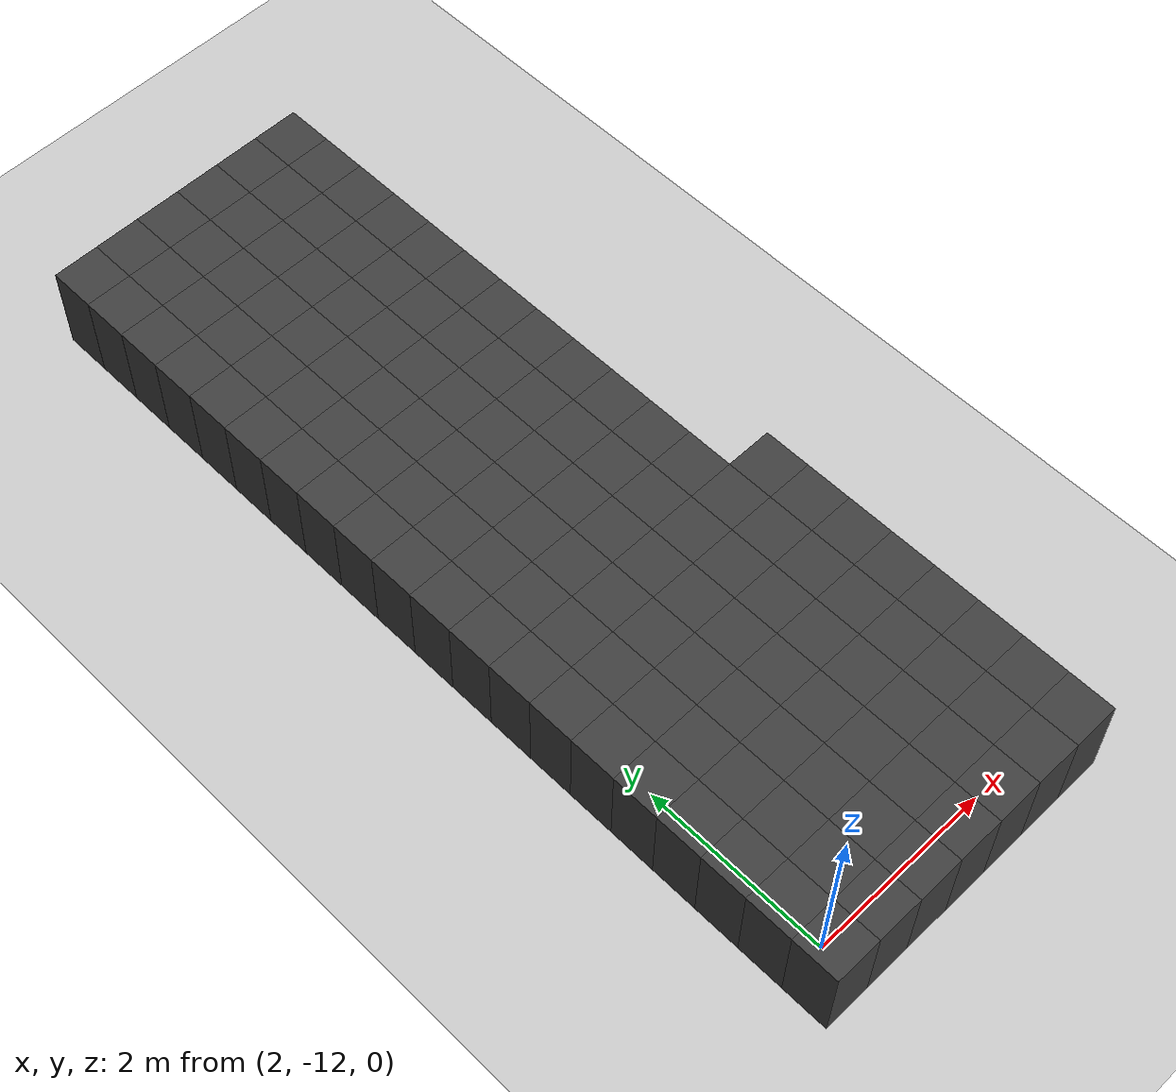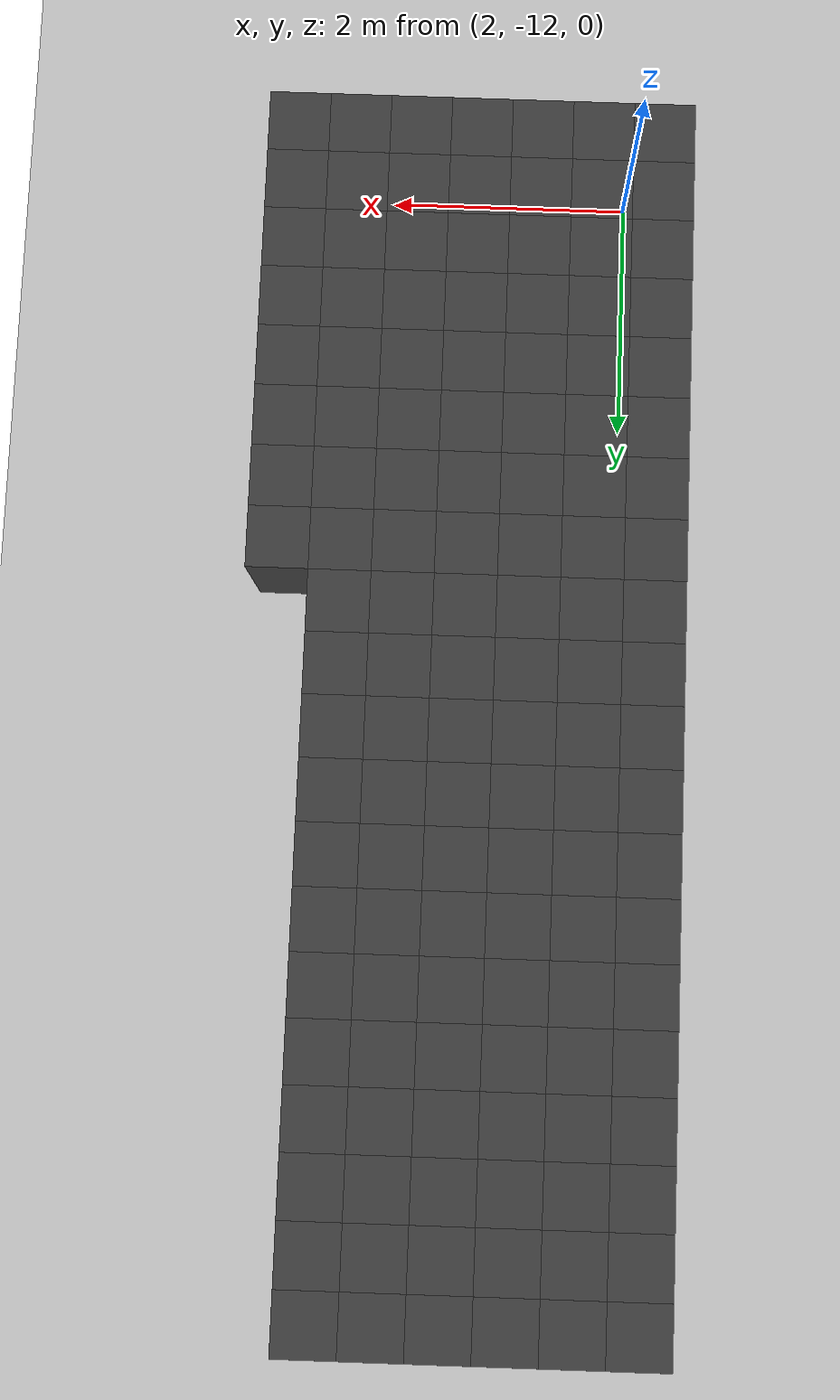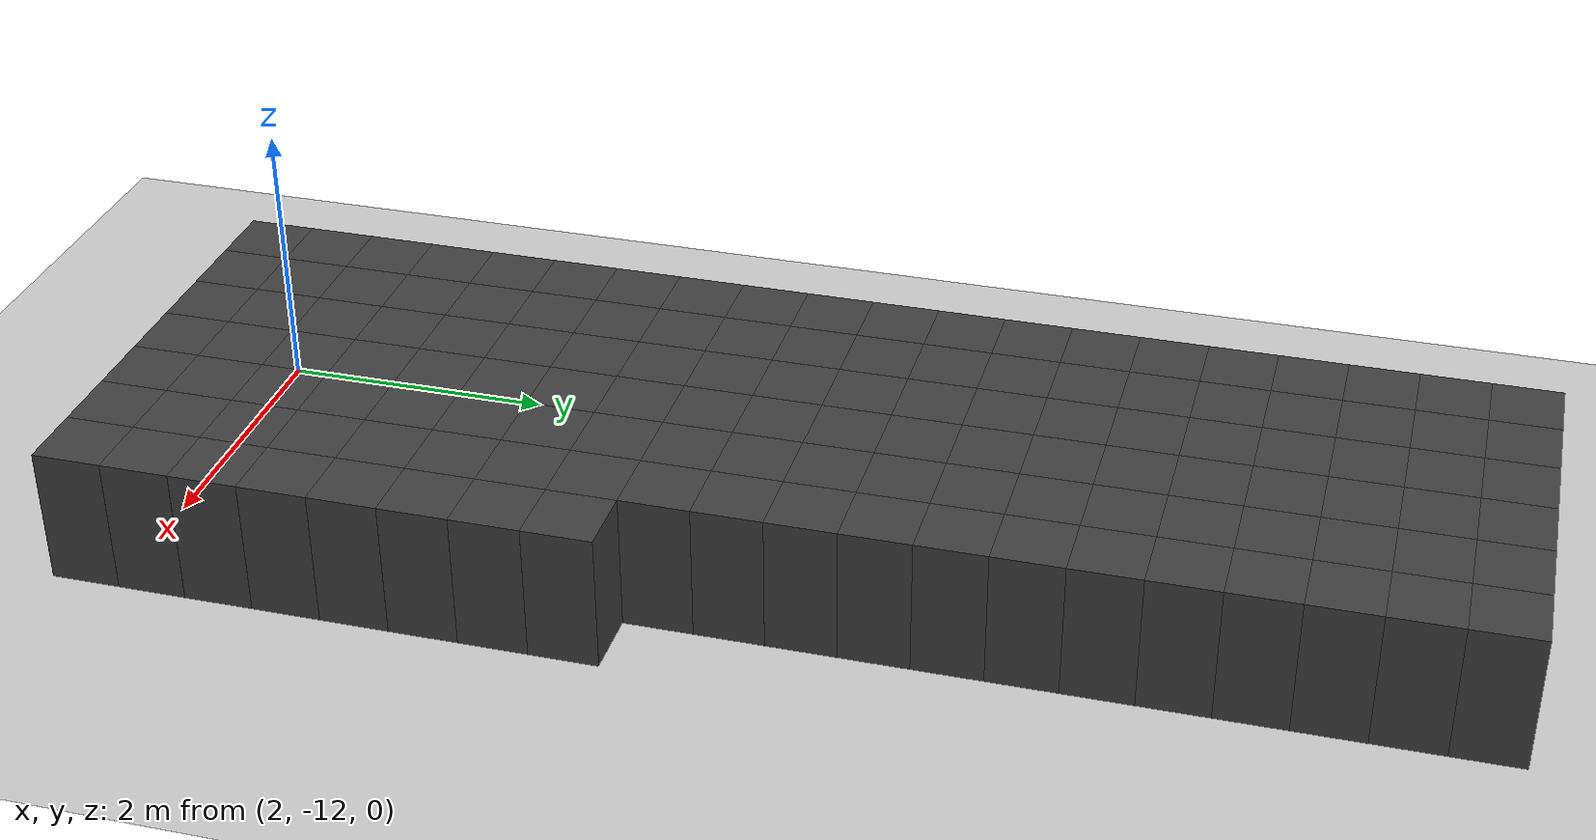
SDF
<sdf version="1.7">
 <world name="map_14735">
  <model name="ground_plane">
   <static>true</static>
   <link name="link">
    <collision name="collision">
     <geometry><plane><normal>0 0 1</normal><size>200 200</size></plane></geometry>
    </collision>
    <visual name="visual">
     <geometry><plane><normal>0 0 1</normal><size>200 200</size></plane></geometry>
     <material><ambient>0.8 0.8 0.8 1</ambient><diffuse>0.8 0.8 0.8 1</diffuse></material>
    </visual>
   </link>
  </model>
  <model name="maze_environment">
   <static>true</static>
   <link name="wall_961">
    <pose>1.750 -2.750 0.500 0 0 0</pose>
    <collision name="col"><geometry><box><size>0.5 0.5 1.0</size></box></geometry></collision>
    <visual name="vis">
     <geometry><box><size>0.5 0.5 1.0</size></box></geometry>
     <material><ambient>0.15 0.15 0.15 1</ambient><diffuse>0.25 0.25 0.25 1</diffuse></material>
    </visual>
   </link>
   <link name="wall_962">
    <pose>2.250 -2.750 0.500 0 0 0</pose>
    <collision name="col"><geometry><box><size>0.5 0.5 1.0</size></box></geometry></collision>
    <visual name="vis">
     <geometry><box><size>0.5 0.5 1.0</size></box></geometry>
     <material><ambient>0.15 0.15 0.15 1</ambient><diffuse>0.25 0.25 0.25 1</diffuse></material>
    </visual>
   </link>
   <link name="wall_963">
    <pose>2.750 -2.750 0.500 0 0 0</pose>
    <collision name="col"><geometry><box><size>0.5 0.5 1.0</size></box></geometry></collision>
    <visual name="vis">
     <geometry><box><size>0.5 0.5 1.0</size></box></geometry>
     <material><ambient>0.15 0.15 0.15 1</ambient><diffuse>0.25 0.25 0.25 1</diffuse></material>
    </visual>
   </link>
   <link name="wall_964">
    <pose>3.250 -2.750 0.500 0 0 0</pose>
    <collision name="col"><geometry><box><size>0.5 0.5 1.0</size></box></geometry></collision>
    <visual name="vis">
     <geometry><box><size>0.5 0.5 1.0</size></box></geometry>
     <material><ambient>0.15 0.15 0.15 1</ambient><diffuse>0.25 0.25 0.25 1</diffuse></material>
    </visual>
   </link>
   <link name="wall_965">
    <pose>3.750 -2.750 0.500 0 0 0</pose>
    <collision name="col"><geometry><box><size>0.5 0.5 1.0</size></box></geometry></collision>
    <visual name="vis">
     <geometry><box><size>0.5 0.5 1.0</size></box></geometry>
     <material><ambient>0.15 0.15 0.15 1</ambient><diffuse>0.25 0.25 0.25 1</diffuse></material>
    </visual>
   </link>
   <link name="wall_966">
    <pose>4.250 -2.750 0.500 0 0 0</pose>
    <collision name="col"><geometry><box><size>0.5 0.5 1.0</size></box></geometry></collision>
    <visual name="vis">
     <geometry><box><size>0.5 0.5 1.0</size></box></geometry>
     <material><ambient>0.15 0.15 0.15 1</ambient><diffuse>0.25 0.25 0.25 1</diffuse></material>
    </visual>
   </link>
   <link name="wall_1001">
    <pose>1.750 -3.250 0.500 0 0 0</pose>
    <collision name="col"><geometry><box><size>0.5 0.5 1.0</size></box></geometry></collision>
    <visual name="vis">
     <geometry><box><size>0.5 0.5 1.0</size></box></geometry>
     <material><ambient>0.15 0.15 0.15 1</ambient><diffuse>0.25 0.25 0.25 1</diffuse></material>
    </visual>
   </link>
   <link name="wall_1002">
    <pose>2.250 -3.250 0.500 0 0 0</pose>
    <collision name="col"><geometry><box><size>0.5 0.5 1.0</size></box></geometry></collision>
    <visual name="vis">
     <geometry><box><size>0.5 0.5 1.0</size></box></geometry>
     <material><ambient>0.15 0.15 0.15 1</ambient><diffuse>0.25 0.25 0.25 1</diffuse></material>
    </visual>
   </link>
   <link name="wall_1003">
    <pose>2.750 -3.250 0.500 0 0 0</pose>
    <collision name="col"><geometry><box><size>0.5 0.5 1.0</size></box></geometry></collision>
    <visual name="vis">
     <geometry><box><size>0.5 0.5 1.0</size></box></geometry>
     <material><ambient>0.15 0.15 0.15 1</ambient><diffuse>0.25 0.25 0.25 1</diffuse></material>
    </visual>
   </link>
   <link name="wall_1004">
    <pose>3.250 -3.250 0.500 0 0 0</pose>
    <collision name="col"><geometry><box><size>0.5 0.5 1.0</size></box></geometry></collision>
    <visual name="vis">
     <geometry><box><size>0.5 0.5 1.0</size></box></geometry>
     <material><ambient>0.15 0.15 0.15 1</ambient><diffuse>0.25 0.25 0.25 1</diffuse></material>
    </visual>
   </link>
   <link name="wall_1005">
    <pose>3.750 -3.250 0.500 0 0 0</pose>
    <collision name="col"><geometry><box><size>0.5 0.5 1.0</size></box></geometry></collision>
    <visual name="vis">
     <geometry><box><size>0.5 0.5 1.0</size></box></geometry>
     <material><ambient>0.15 0.15 0.15 1</ambient><diffuse>0.25 0.25 0.25 1</diffuse></material>
    </visual>
   </link>
   <link name="wall_1006">
    <pose>4.250 -3.250 0.500 0 0 0</pose>
    <collision name="col"><geometry><box><size>0.5 0.5 1.0</size></box></geometry></collision>
    <visual name="vis">
     <geometry><box><size>0.5 0.5 1.0</size></box></geometry>
     <material><ambient>0.15 0.15 0.15 1</ambient><diffuse>0.25 0.25 0.25 1</diffuse></material>
    </visual>
   </link>
   <link name="wall_1041">
    <pose>1.750 -3.750 0.500 0 0 0</pose>
    <collision name="col"><geometry><box><size>0.5 0.5 1.0</size></box></geometry></collision>
    <visual name="vis">
     <geometry><box><size>0.5 0.5 1.0</size></box></geometry>
     <material><ambient>0.15 0.15 0.15 1</ambient><diffuse>0.25 0.25 0.25 1</diffuse></material>
    </visual>
   </link>
   <link name="wall_1042">
    <pose>2.250 -3.750 0.500 0 0 0</pose>
    <collision name="col"><geometry><box><size>0.5 0.5 1.0</size></box></geometry></collision>
    <visual name="vis">
     <geometry><box><size>0.5 0.5 1.0</size></box></geometry>
     <material><ambient>0.15 0.15 0.15 1</ambient><diffuse>0.25 0.25 0.25 1</diffuse></material>
    </visual>
   </link>
   <link name="wall_1043">
    <pose>2.750 -3.750 0.500 0 0 0</pose>
    <collision name="col"><geometry><box><size>0.5 0.5 1.0</size></box></geometry></collision>
    <visual name="vis">
     <geometry><box><size>0.5 0.5 1.0</size></box></geometry>
     <material><ambient>0.15 0.15 0.15 1</ambient><diffuse>0.25 0.25 0.25 1</diffuse></material>
    </visual>
   </link>
   <link name="wall_1044">
    <pose>3.250 -3.750 0.500 0 0 0</pose>
    <collision name="col"><geometry><box><size>0.5 0.5 1.0</size></box></geometry></collision>
    <visual name="vis">
     <geometry><box><size>0.5 0.5 1.0</size></box></geometry>
     <material><ambient>0.15 0.15 0.15 1</ambient><diffuse>0.25 0.25 0.25 1</diffuse></material>
    </visual>
   </link>
   <link name="wall_1045">
    <pose>3.750 -3.750 0.500 0 0 0</pose>
    <collision name="col"><geometry><box><size>0.5 0.5 1.0</size></box></geometry></collision>
    <visual name="vis">
     <geometry><box><size>0.5 0.5 1.0</size></box></geometry>
     <material><ambient>0.15 0.15 0.15 1</ambient><diffuse>0.25 0.25 0.25 1</diffuse></material>
    </visual>
   </link>
   <link name="wall_1046">
    <pose>4.250 -3.750 0.500 0 0 0</pose>
    <collision name="col"><geometry><box><size>0.5 0.5 1.0</size></box></geometry></collision>
    <visual name="vis">
     <geometry><box><size>0.5 0.5 1.0</size></box></geometry>
     <material><ambient>0.15 0.15 0.15 1</ambient><diffuse>0.25 0.25 0.25 1</diffuse></material>
    </visual>
   </link>
   <link name="wall_1081">
    <pose>1.750 -4.250 0.500 0 0 0</pose>
    <collision name="col"><geometry><box><size>0.5 0.5 1.0</size></box></geometry></collision>
    <visual name="vis">
     <geometry><box><size>0.5 0.5 1.0</size></box></geometry>
     <material><ambient>0.15 0.15 0.15 1</ambient><diffuse>0.25 0.25 0.25 1</diffuse></material>
    </visual>
   </link>
   <link name="wall_1082">
    <pose>2.250 -4.250 0.500 0 0 0</pose>
    <collision name="col"><geometry><box><size>0.5 0.5 1.0</size></box></geometry></collision>
    <visual name="vis">
     <geometry><box><size>0.5 0.5 1.0</size></box></geometry>
     <material><ambient>0.15 0.15 0.15 1</ambient><diffuse>0.25 0.25 0.25 1</diffuse></material>
    </visual>
   </link>
   <link name="wall_1083">
    <pose>2.750 -4.250 0.500 0 0 0</pose>
    <collision name="col"><geometry><box><size>0.5 0.5 1.0</size></box></geometry></collision>
    <visual name="vis">
     <geometry><box><size>0.5 0.5 1.0</size></box></geometry>
     <material><ambient>0.15 0.15 0.15 1</ambient><diffuse>0.25 0.25 0.25 1</diffuse></material>
    </visual>
   </link>
   <link name="wall_1084">
    <pose>3.250 -4.250 0.500 0 0 0</pose>
    <collision name="col"><geometry><box><size>0.5 0.5 1.0</size></box></geometry></collision>
    <visual name="vis">
     <geometry><box><size>0.5 0.5 1.0</size></box></geometry>
     <material><ambient>0.15 0.15 0.15 1</ambient><diffuse>0.25 0.25 0.25 1</diffuse></material>
    </visual>
   </link>
   <link name="wall_1085">
    <pose>3.750 -4.250 0.500 0 0 0</pose>
    <collision name="col"><geometry><box><size>0.5 0.5 1.0</size></box></geometry></collision>
    <visual name="vis">
     <geometry><box><size>0.5 0.5 1.0</size></box></geometry>
     <material><ambient>0.15 0.15 0.15 1</ambient><diffuse>0.25 0.25 0.25 1</diffuse></material>
    </visual>
   </link>
   <link name="wall_1086">
    <pose>4.250 -4.250 0.500 0 0 0</pose>
    <collision name="col"><geometry><box><size>0.5 0.5 1.0</size></box></geometry></collision>
    <visual name="vis">
     <geometry><box><size>0.5 0.5 1.0</size></box></geometry>
     <material><ambient>0.15 0.15 0.15 1</ambient><diffuse>0.25 0.25 0.25 1</diffuse></material>
    </visual>
   </link>
   <link name="wall_1121">
    <pose>1.750 -4.750 0.500 0 0 0</pose>
    <collision name="col"><geometry><box><size>0.5 0.5 1.0</size></box></geometry></collision>
    <visual name="vis">
     <geometry><box><size>0.5 0.5 1.0</size></box></geometry>
     <material><ambient>0.15 0.15 0.15 1</ambient><diffuse>0.25 0.25 0.25 1</diffuse></material>
    </visual>
   </link>
   <link name="wall_1122">
    <pose>2.250 -4.750 0.500 0 0 0</pose>
    <collision name="col"><geometry><box><size>0.5 0.5 1.0</size></box></geometry></collision>
    <visual name="vis">
     <geometry><box><size>0.5 0.5 1.0</size></box></geometry>
     <material><ambient>0.15 0.15 0.15 1</ambient><diffuse>0.25 0.25 0.25 1</diffuse></material>
    </visual>
   </link>
   <link name="wall_1123">
    <pose>2.750 -4.750 0.500 0 0 0</pose>
    <collision name="col"><geometry><box><size>0.5 0.5 1.0</size></box></geometry></collision>
    <visual name="vis">
     <geometry><box><size>0.5 0.5 1.0</size></box></geometry>
     <material><ambient>0.15 0.15 0.15 1</ambient><diffuse>0.25 0.25 0.25 1</diffuse></material>
    </visual>
   </link>
   <link name="wall_1124">
    <pose>3.250 -4.750 0.500 0 0 0</pose>
    <collision name="col"><geometry><box><size>0.5 0.5 1.0</size></box></geometry></collision>
    <visual name="vis">
     <geometry><box><size>0.5 0.5 1.0</size></box></geometry>
     <material><ambient>0.15 0.15 0.15 1</ambient><diffuse>0.25 0.25 0.25 1</diffuse></material>
    </visual>
   </link>
   <link name="wall_1125">
    <pose>3.750 -4.750 0.500 0 0 0</pose>
    <collision name="col"><geometry><box><size>0.5 0.5 1.0</size></box></geometry></collision>
    <visual name="vis">
     <geometry><box><size>0.5 0.5 1.0</size></box></geometry>
     <material><ambient>0.15 0.15 0.15 1</ambient><diffuse>0.25 0.25 0.25 1</diffuse></material>
    </visual>
   </link>
   <link name="wall_1126">
    <pose>4.250 -4.750 0.500 0 0 0</pose>
    <collision name="col"><geometry><box><size>0.5 0.5 1.0</size></box></geometry></collision>
    <visual name="vis">
     <geometry><box><size>0.5 0.5 1.0</size></box></geometry>
     <material><ambient>0.15 0.15 0.15 1</ambient><diffuse>0.25 0.25 0.25 1</diffuse></material>
    </visual>
   </link>
   <link name="wall_1159">
    <pose>1.750 -5.250 0.500 0 0 0</pose>
    <collision name="col"><geometry><box><size>0.5 0.5 1.0</size></box></geometry></collision>
    <visual name="vis">
     <geometry><box><size>0.5 0.5 1.0</size></box></geometry>
     <material><ambient>0.15 0.15 0.15 1</ambient><diffuse>0.25 0.25 0.25 1</diffuse></material>
    </visual>
   </link>
   <link name="wall_1160">
    <pose>2.250 -5.250 0.500 0 0 0</pose>
    <collision name="col"><geometry><box><size>0.5 0.5 1.0</size></box></geometry></collision>
    <visual name="vis">
     <geometry><box><size>0.5 0.5 1.0</size></box></geometry>
     <material><ambient>0.15 0.15 0.15 1</ambient><diffuse>0.25 0.25 0.25 1</diffuse></material>
    </visual>
   </link>
   <link name="wall_1161">
    <pose>2.750 -5.250 0.500 0 0 0</pose>
    <collision name="col"><geometry><box><size>0.5 0.5 1.0</size></box></geometry></collision>
    <visual name="vis">
     <geometry><box><size>0.5 0.5 1.0</size></box></geometry>
     <material><ambient>0.15 0.15 0.15 1</ambient><diffuse>0.25 0.25 0.25 1</diffuse></material>
    </visual>
   </link>
   <link name="wall_1162">
    <pose>3.250 -5.250 0.500 0 0 0</pose>
    <collision name="col"><geometry><box><size>0.5 0.5 1.0</size></box></geometry></collision>
    <visual name="vis">
     <geometry><box><size>0.5 0.5 1.0</size></box></geometry>
     <material><ambient>0.15 0.15 0.15 1</ambient><diffuse>0.25 0.25 0.25 1</diffuse></material>
    </visual>
   </link>
   <link name="wall_1163">
    <pose>3.750 -5.250 0.500 0 0 0</pose>
    <collision name="col"><geometry><box><size>0.5 0.5 1.0</size></box></geometry></collision>
    <visual name="vis">
     <geometry><box><size>0.5 0.5 1.0</size></box></geometry>
     <material><ambient>0.15 0.15 0.15 1</ambient><diffuse>0.25 0.25 0.25 1</diffuse></material>
    </visual>
   </link>
   <link name="wall_1164">
    <pose>4.250 -5.250 0.500 0 0 0</pose>
    <collision name="col"><geometry><box><size>0.5 0.5 1.0</size></box></geometry></collision>
    <visual name="vis">
     <geometry><box><size>0.5 0.5 1.0</size></box></geometry>
     <material><ambient>0.15 0.15 0.15 1</ambient><diffuse>0.25 0.25 0.25 1</diffuse></material>
    </visual>
   </link>
   <link name="wall_1197">
    <pose>1.750 -5.750 0.500 0 0 0</pose>
    <collision name="col"><geometry><box><size>0.5 0.5 1.0</size></box></geometry></collision>
    <visual name="vis">
     <geometry><box><size>0.5 0.5 1.0</size></box></geometry>
     <material><ambient>0.15 0.15 0.15 1</ambient><diffuse>0.25 0.25 0.25 1</diffuse></material>
    </visual>
   </link>
   <link name="wall_1198">
    <pose>2.250 -5.750 0.500 0 0 0</pose>
    <collision name="col"><geometry><box><size>0.5 0.5 1.0</size></box></geometry></collision>
    <visual name="vis">
     <geometry><box><size>0.5 0.5 1.0</size></box></geometry>
     <material><ambient>0.15 0.15 0.15 1</ambient><diffuse>0.25 0.25 0.25 1</diffuse></material>
    </visual>
   </link>
   <link name="wall_1199">
    <pose>2.750 -5.750 0.500 0 0 0</pose>
    <collision name="col"><geometry><box><size>0.5 0.5 1.0</size></box></geometry></collision>
    <visual name="vis">
     <geometry><box><size>0.5 0.5 1.0</size></box></geometry>
     <material><ambient>0.15 0.15 0.15 1</ambient><diffuse>0.25 0.25 0.25 1</diffuse></material>
    </visual>
   </link>
   <link name="wall_1200">
    <pose>3.250 -5.750 0.500 0 0 0</pose>
    <collision name="col"><geometry><box><size>0.5 0.5 1.0</size></box></geometry></collision>
    <visual name="vis">
     <geometry><box><size>0.5 0.5 1.0</size></box></geometry>
     <material><ambient>0.15 0.15 0.15 1</ambient><diffuse>0.25 0.25 0.25 1</diffuse></material>
    </visual>
   </link>
   <link name="wall_1201">
    <pose>3.750 -5.750 0.500 0 0 0</pose>
    <collision name="col"><geometry><box><size>0.5 0.5 1.0</size></box></geometry></collision>
    <visual name="vis">
     <geometry><box><size>0.5 0.5 1.0</size></box></geometry>
     <material><ambient>0.15 0.15 0.15 1</ambient><diffuse>0.25 0.25 0.25 1</diffuse></material>
    </visual>
   </link>
   <link name="wall_1202">
    <pose>4.250 -5.750 0.500 0 0 0</pose>
    <collision name="col"><geometry><box><size>0.5 0.5 1.0</size></box></geometry></collision>
    <visual name="vis">
     <geometry><box><size>0.5 0.5 1.0</size></box></geometry>
     <material><ambient>0.15 0.15 0.15 1</ambient><diffuse>0.25 0.25 0.25 1</diffuse></material>
    </visual>
   </link>
   <link name="wall_1235">
    <pose>1.750 -6.250 0.500 0 0 0</pose>
    <collision name="col"><geometry><box><size>0.5 0.5 1.0</size></box></geometry></collision>
    <visual name="vis">
     <geometry><box><size>0.5 0.5 1.0</size></box></geometry>
     <material><ambient>0.15 0.15 0.15 1</ambient><diffuse>0.25 0.25 0.25 1</diffuse></material>
    </visual>
   </link>
   <link name="wall_1236">
    <pose>2.250 -6.250 0.500 0 0 0</pose>
    <collision name="col"><geometry><box><size>0.5 0.5 1.0</size></box></geometry></collision>
    <visual name="vis">
     <geometry><box><size>0.5 0.5 1.0</size></box></geometry>
     <material><ambient>0.15 0.15 0.15 1</ambient><diffuse>0.25 0.25 0.25 1</diffuse></material>
    </visual>
   </link>
   <link name="wall_1237">
    <pose>2.750 -6.250 0.500 0 0 0</pose>
    <collision name="col"><geometry><box><size>0.5 0.5 1.0</size></box></geometry></collision>
    <visual name="vis">
     <geometry><box><size>0.5 0.5 1.0</size></box></geometry>
     <material><ambient>0.15 0.15 0.15 1</ambient><diffuse>0.25 0.25 0.25 1</diffuse></material>
    </visual>
   </link>
   <link name="wall_1238">
    <pose>3.250 -6.250 0.500 0 0 0</pose>
    <collision name="col"><geometry><box><size>0.5 0.5 1.0</size></box></geometry></collision>
    <visual name="vis">
     <geometry><box><size>0.5 0.5 1.0</size></box></geometry>
     <material><ambient>0.15 0.15 0.15 1</ambient><diffuse>0.25 0.25 0.25 1</diffuse></material>
    </visual>
   </link>
   <link name="wall_1239">
    <pose>3.750 -6.250 0.500 0 0 0</pose>
    <collision name="col"><geometry><box><size>0.5 0.5 1.0</size></box></geometry></collision>
    <visual name="vis">
     <geometry><box><size>0.5 0.5 1.0</size></box></geometry>
     <material><ambient>0.15 0.15 0.15 1</ambient><diffuse>0.25 0.25 0.25 1</diffuse></material>
    </visual>
   </link>
   <link name="wall_1240">
    <pose>4.250 -6.250 0.500 0 0 0</pose>
    <collision name="col"><geometry><box><size>0.5 0.5 1.0</size></box></geometry></collision>
    <visual name="vis">
     <geometry><box><size>0.5 0.5 1.0</size></box></geometry>
     <material><ambient>0.15 0.15 0.15 1</ambient><diffuse>0.25 0.25 0.25 1</diffuse></material>
    </visual>
   </link>
   <link name="wall_1275">
    <pose>1.750 -6.750 0.500 0 0 0</pose>
    <collision name="col"><geometry><box><size>0.5 0.5 1.0</size></box></geometry></collision>
    <visual name="vis">
     <geometry><box><size>0.5 0.5 1.0</size></box></geometry>
     <material><ambient>0.15 0.15 0.15 1</ambient><diffuse>0.25 0.25 0.25 1</diffuse></material>
    </visual>
   </link>
   <link name="wall_1276">
    <pose>2.250 -6.750 0.500 0 0 0</pose>
    <collision name="col"><geometry><box><size>0.5 0.5 1.0</size></box></geometry></collision>
    <visual name="vis">
     <geometry><box><size>0.5 0.5 1.0</size></box></geometry>
     <material><ambient>0.15 0.15 0.15 1</ambient><diffuse>0.25 0.25 0.25 1</diffuse></material>
    </visual>
   </link>
   <link name="wall_1277">
    <pose>2.750 -6.750 0.500 0 0 0</pose>
    <collision name="col"><geometry><box><size>0.5 0.5 1.0</size></box></geometry></collision>
    <visual name="vis">
     <geometry><box><size>0.5 0.5 1.0</size></box></geometry>
     <material><ambient>0.15 0.15 0.15 1</ambient><diffuse>0.25 0.25 0.25 1</diffuse></material>
    </visual>
   </link>
   <link name="wall_1278">
    <pose>3.250 -6.750 0.500 0 0 0</pose>
    <collision name="col"><geometry><box><size>0.5 0.5 1.0</size></box></geometry></collision>
    <visual name="vis">
     <geometry><box><size>0.5 0.5 1.0</size></box></geometry>
     <material><ambient>0.15 0.15 0.15 1</ambient><diffuse>0.25 0.25 0.25 1</diffuse></material>
    </visual>
   </link>
   <link name="wall_1279">
    <pose>3.750 -6.750 0.500 0 0 0</pose>
    <collision name="col"><geometry><box><size>0.5 0.5 1.0</size></box></geometry></collision>
    <visual name="vis">
     <geometry><box><size>0.5 0.5 1.0</size></box></geometry>
     <material><ambient>0.15 0.15 0.15 1</ambient><diffuse>0.25 0.25 0.25 1</diffuse></material>
    </visual>
   </link>
   <link name="wall_1280">
    <pose>4.250 -6.750 0.500 0 0 0</pose>
    <collision name="col"><geometry><box><size>0.5 0.5 1.0</size></box></geometry></collision>
    <visual name="vis">
     <geometry><box><size>0.5 0.5 1.0</size></box></geometry>
     <material><ambient>0.15 0.15 0.15 1</ambient><diffuse>0.25 0.25 0.25 1</diffuse></material>
    </visual>
   </link>
   <link name="wall_1316">
    <pose>1.750 -7.250 0.500 0 0 0</pose>
    <collision name="col"><geometry><box><size>0.5 0.5 1.0</size></box></geometry></collision>
    <visual name="vis">
     <geometry><box><size>0.5 0.5 1.0</size></box></geometry>
     <material><ambient>0.15 0.15 0.15 1</ambient><diffuse>0.25 0.25 0.25 1</diffuse></material>
    </visual>
   </link>
   <link name="wall_1317">
    <pose>2.250 -7.250 0.500 0 0 0</pose>
    <collision name="col"><geometry><box><size>0.5 0.5 1.0</size></box></geometry></collision>
    <visual name="vis">
     <geometry><box><size>0.5 0.5 1.0</size></box></geometry>
     <material><ambient>0.15 0.15 0.15 1</ambient><diffuse>0.25 0.25 0.25 1</diffuse></material>
    </visual>
   </link>
   <link name="wall_1318">
    <pose>2.750 -7.250 0.500 0 0 0</pose>
    <collision name="col"><geometry><box><size>0.5 0.5 1.0</size></box></geometry></collision>
    <visual name="vis">
     <geometry><box><size>0.5 0.5 1.0</size></box></geometry>
     <material><ambient>0.15 0.15 0.15 1</ambient><diffuse>0.25 0.25 0.25 1</diffuse></material>
    </visual>
   </link>
   <link name="wall_1319">
    <pose>3.250 -7.250 0.500 0 0 0</pose>
    <collision name="col"><geometry><box><size>0.5 0.5 1.0</size></box></geometry></collision>
    <visual name="vis">
     <geometry><box><size>0.5 0.5 1.0</size></box></geometry>
     <material><ambient>0.15 0.15 0.15 1</ambient><diffuse>0.25 0.25 0.25 1</diffuse></material>
    </visual>
   </link>
   <link name="wall_1320">
    <pose>3.750 -7.250 0.500 0 0 0</pose>
    <collision name="col"><geometry><box><size>0.5 0.5 1.0</size></box></geometry></collision>
    <visual name="vis">
     <geometry><box><size>0.5 0.5 1.0</size></box></geometry>
     <material><ambient>0.15 0.15 0.15 1</ambient><diffuse>0.25 0.25 0.25 1</diffuse></material>
    </visual>
   </link>
   <link name="wall_1321">
    <pose>4.250 -7.250 0.500 0 0 0</pose>
    <collision name="col"><geometry><box><size>0.5 0.5 1.0</size></box></geometry></collision>
    <visual name="vis">
     <geometry><box><size>0.5 0.5 1.0</size></box></geometry>
     <material><ambient>0.15 0.15 0.15 1</ambient><diffuse>0.25 0.25 0.25 1</diffuse></material>
    </visual>
   </link>
   <link name="wall_1365">
    <pose>1.750 -7.750 0.500 0 0 0</pose>
    <collision name="col"><geometry><box><size>0.5 0.5 1.0</size></box></geometry></collision>
    <visual name="vis">
     <geometry><box><size>0.5 0.5 1.0</size></box></geometry>
     <material><ambient>0.15 0.15 0.15 1</ambient><diffuse>0.25 0.25 0.25 1</diffuse></material>
    </visual>
   </link>
   <link name="wall_1366">
    <pose>2.250 -7.750 0.500 0 0 0</pose>
    <collision name="col"><geometry><box><size>0.5 0.5 1.0</size></box></geometry></collision>
    <visual name="vis">
     <geometry><box><size>0.5 0.5 1.0</size></box></geometry>
     <material><ambient>0.15 0.15 0.15 1</ambient><diffuse>0.25 0.25 0.25 1</diffuse></material>
    </visual>
   </link>
   <link name="wall_1367">
    <pose>2.750 -7.750 0.500 0 0 0</pose>
    <collision name="col"><geometry><box><size>0.5 0.5 1.0</size></box></geometry></collision>
    <visual name="vis">
     <geometry><box><size>0.5 0.5 1.0</size></box></geometry>
     <material><ambient>0.15 0.15 0.15 1</ambient><diffuse>0.25 0.25 0.25 1</diffuse></material>
    </visual>
   </link>
   <link name="wall_1368">
    <pose>3.250 -7.750 0.500 0 0 0</pose>
    <collision name="col"><geometry><box><size>0.5 0.5 1.0</size></box></geometry></collision>
    <visual name="vis">
     <geometry><box><size>0.5 0.5 1.0</size></box></geometry>
     <material><ambient>0.15 0.15 0.15 1</ambient><diffuse>0.25 0.25 0.25 1</diffuse></material>
    </visual>
   </link>
   <link name="wall_1369">
    <pose>3.750 -7.750 0.500 0 0 0</pose>
    <collision name="col"><geometry><box><size>0.5 0.5 1.0</size></box></geometry></collision>
    <visual name="vis">
     <geometry><box><size>0.5 0.5 1.0</size></box></geometry>
     <material><ambient>0.15 0.15 0.15 1</ambient><diffuse>0.25 0.25 0.25 1</diffuse></material>
    </visual>
   </link>
   <link name="wall_1370">
    <pose>4.250 -7.750 0.500 0 0 0</pose>
    <collision name="col"><geometry><box><size>0.5 0.5 1.0</size></box></geometry></collision>
    <visual name="vis">
     <geometry><box><size>0.5 0.5 1.0</size></box></geometry>
     <material><ambient>0.15 0.15 0.15 1</ambient><diffuse>0.25 0.25 0.25 1</diffuse></material>
    </visual>
   </link>
   <link name="wall_1407">
    <pose>1.750 -8.250 0.500 0 0 0</pose>
    <collision name="col"><geometry><box><size>0.5 0.5 1.0</size></box></geometry></collision>
    <visual name="vis">
     <geometry><box><size>0.5 0.5 1.0</size></box></geometry>
     <material><ambient>0.15 0.15 0.15 1</ambient><diffuse>0.25 0.25 0.25 1</diffuse></material>
    </visual>
   </link>
   <link name="wall_1408">
    <pose>2.250 -8.250 0.500 0 0 0</pose>
    <collision name="col"><geometry><box><size>0.5 0.5 1.0</size></box></geometry></collision>
    <visual name="vis">
     <geometry><box><size>0.5 0.5 1.0</size></box></geometry>
     <material><ambient>0.15 0.15 0.15 1</ambient><diffuse>0.25 0.25 0.25 1</diffuse></material>
    </visual>
   </link>
   <link name="wall_1409">
    <pose>2.750 -8.250 0.500 0 0 0</pose>
    <collision name="col"><geometry><box><size>0.5 0.5 1.0</size></box></geometry></collision>
    <visual name="vis">
     <geometry><box><size>0.5 0.5 1.0</size></box></geometry>
     <material><ambient>0.15 0.15 0.15 1</ambient><diffuse>0.25 0.25 0.25 1</diffuse></material>
    </visual>
   </link>
   <link name="wall_1410">
    <pose>3.250 -8.250 0.500 0 0 0</pose>
    <collision name="col"><geometry><box><size>0.5 0.5 1.0</size></box></geometry></collision>
    <visual name="vis">
     <geometry><box><size>0.5 0.5 1.0</size></box></geometry>
     <material><ambient>0.15 0.15 0.15 1</ambient><diffuse>0.25 0.25 0.25 1</diffuse></material>
    </visual>
   </link>
   <link name="wall_1411">
    <pose>3.750 -8.250 0.500 0 0 0</pose>
    <collision name="col"><geometry><box><size>0.5 0.5 1.0</size></box></geometry></collision>
    <visual name="vis">
     <geometry><box><size>0.5 0.5 1.0</size></box></geometry>
     <material><ambient>0.15 0.15 0.15 1</ambient><diffuse>0.25 0.25 0.25 1</diffuse></material>
    </visual>
   </link>
   <link name="wall_1412">
    <pose>4.250 -8.250 0.500 0 0 0</pose>
    <collision name="col"><geometry><box><size>0.5 0.5 1.0</size></box></geometry></collision>
    <visual name="vis">
     <geometry><box><size>0.5 0.5 1.0</size></box></geometry>
     <material><ambient>0.15 0.15 0.15 1</ambient><diffuse>0.25 0.25 0.25 1</diffuse></material>
    </visual>
   </link>
   <link name="wall_1449">
    <pose>1.750 -8.750 0.500 0 0 0</pose>
    <collision name="col"><geometry><box><size>0.5 0.5 1.0</size></box></geometry></collision>
    <visual name="vis">
     <geometry><box><size>0.5 0.5 1.0</size></box></geometry>
     <material><ambient>0.15 0.15 0.15 1</ambient><diffuse>0.25 0.25 0.25 1</diffuse></material>
    </visual>
   </link>
   <link name="wall_1450">
    <pose>2.250 -8.750 0.500 0 0 0</pose>
    <collision name="col"><geometry><box><size>0.5 0.5 1.0</size></box></geometry></collision>
    <visual name="vis">
     <geometry><box><size>0.5 0.5 1.0</size></box></geometry>
     <material><ambient>0.15 0.15 0.15 1</ambient><diffuse>0.25 0.25 0.25 1</diffuse></material>
    </visual>
   </link>
   <link name="wall_1451">
    <pose>2.750 -8.750 0.500 0 0 0</pose>
    <collision name="col"><geometry><box><size>0.5 0.5 1.0</size></box></geometry></collision>
    <visual name="vis">
     <geometry><box><size>0.5 0.5 1.0</size></box></geometry>
     <material><ambient>0.15 0.15 0.15 1</ambient><diffuse>0.25 0.25 0.25 1</diffuse></material>
    </visual>
   </link>
   <link name="wall_1452">
    <pose>3.250 -8.750 0.500 0 0 0</pose>
    <collision name="col"><geometry><box><size>0.5 0.5 1.0</size></box></geometry></collision>
    <visual name="vis">
     <geometry><box><size>0.5 0.5 1.0</size></box></geometry>
     <material><ambient>0.15 0.15 0.15 1</ambient><diffuse>0.25 0.25 0.25 1</diffuse></material>
    </visual>
   </link>
   <link name="wall_1453">
    <pose>3.750 -8.750 0.500 0 0 0</pose>
    <collision name="col"><geometry><box><size>0.5 0.5 1.0</size></box></geometry></collision>
    <visual name="vis">
     <geometry><box><size>0.5 0.5 1.0</size></box></geometry>
     <material><ambient>0.15 0.15 0.15 1</ambient><diffuse>0.25 0.25 0.25 1</diffuse></material>
    </visual>
   </link>
   <link name="wall_1454">
    <pose>4.250 -8.750 0.500 0 0 0</pose>
    <collision name="col"><geometry><box><size>0.5 0.5 1.0</size></box></geometry></collision>
    <visual name="vis">
     <geometry><box><size>0.5 0.5 1.0</size></box></geometry>
     <material><ambient>0.15 0.15 0.15 1</ambient><diffuse>0.25 0.25 0.25 1</diffuse></material>
    </visual>
   </link>
   <link name="wall_1455">
    <pose>4.750 -8.750 0.500 0 0 0</pose>
    <collision name="col"><geometry><box><size>0.5 0.5 1.0</size></box></geometry></collision>
    <visual name="vis">
     <geometry><box><size>0.5 0.5 1.0</size></box></geometry>
     <material><ambient>0.15 0.15 0.15 1</ambient><diffuse>0.25 0.25 0.25 1</diffuse></material>
    </visual>
   </link>
   <link name="wall_1491">
    <pose>1.750 -9.250 0.500 0 0 0</pose>
    <collision name="col"><geometry><box><size>0.5 0.5 1.0</size></box></geometry></collision>
    <visual name="vis">
     <geometry><box><size>0.5 0.5 1.0</size></box></geometry>
     <material><ambient>0.15 0.15 0.15 1</ambient><diffuse>0.25 0.25 0.25 1</diffuse></material>
    </visual>
   </link>
   <link name="wall_1492">
    <pose>2.250 -9.250 0.500 0 0 0</pose>
    <collision name="col"><geometry><box><size>0.5 0.5 1.0</size></box></geometry></collision>
    <visual name="vis">
     <geometry><box><size>0.5 0.5 1.0</size></box></geometry>
     <material><ambient>0.15 0.15 0.15 1</ambient><diffuse>0.25 0.25 0.25 1</diffuse></material>
    </visual>
   </link>
   <link name="wall_1493">
    <pose>2.750 -9.250 0.500 0 0 0</pose>
    <collision name="col"><geometry><box><size>0.5 0.5 1.0</size></box></geometry></collision>
    <visual name="vis">
     <geometry><box><size>0.5 0.5 1.0</size></box></geometry>
     <material><ambient>0.15 0.15 0.15 1</ambient><diffuse>0.25 0.25 0.25 1</diffuse></material>
    </visual>
   </link>
   <link name="wall_1494">
    <pose>3.250 -9.250 0.500 0 0 0</pose>
    <collision name="col"><geometry><box><size>0.5 0.5 1.0</size></box></geometry></collision>
    <visual name="vis">
     <geometry><box><size>0.5 0.5 1.0</size></box></geometry>
     <material><ambient>0.15 0.15 0.15 1</ambient><diffuse>0.25 0.25 0.25 1</diffuse></material>
    </visual>
   </link>
   <link name="wall_1495">
    <pose>3.750 -9.250 0.500 0 0 0</pose>
    <collision name="col"><geometry><box><size>0.5 0.5 1.0</size></box></geometry></collision>
    <visual name="vis">
     <geometry><box><size>0.5 0.5 1.0</size></box></geometry>
     <material><ambient>0.15 0.15 0.15 1</ambient><diffuse>0.25 0.25 0.25 1</diffuse></material>
    </visual>
   </link>
   <link name="wall_1496">
    <pose>4.250 -9.250 0.500 0 0 0</pose>
    <collision name="col"><geometry><box><size>0.5 0.5 1.0</size></box></geometry></collision>
    <visual name="vis">
     <geometry><box><size>0.5 0.5 1.0</size></box></geometry>
     <material><ambient>0.15 0.15 0.15 1</ambient><diffuse>0.25 0.25 0.25 1</diffuse></material>
    </visual>
   </link>
   <link name="wall_1497">
    <pose>4.750 -9.250 0.500 0 0 0</pose>
    <collision name="col"><geometry><box><size>0.5 0.5 1.0</size></box></geometry></collision>
    <visual name="vis">
     <geometry><box><size>0.5 0.5 1.0</size></box></geometry>
     <material><ambient>0.15 0.15 0.15 1</ambient><diffuse>0.25 0.25 0.25 1</diffuse></material>
    </visual>
   </link>
   <link name="wall_1533">
    <pose>1.750 -9.750 0.500 0 0 0</pose>
    <collision name="col"><geometry><box><size>0.5 0.5 1.0</size></box></geometry></collision>
    <visual name="vis">
     <geometry><box><size>0.5 0.5 1.0</size></box></geometry>
     <material><ambient>0.15 0.15 0.15 1</ambient><diffuse>0.25 0.25 0.25 1</diffuse></material>
    </visual>
   </link>
   <link name="wall_1534">
    <pose>2.250 -9.750 0.500 0 0 0</pose>
    <collision name="col"><geometry><box><size>0.5 0.5 1.0</size></box></geometry></collision>
    <visual name="vis">
     <geometry><box><size>0.5 0.5 1.0</size></box></geometry>
     <material><ambient>0.15 0.15 0.15 1</ambient><diffuse>0.25 0.25 0.25 1</diffuse></material>
    </visual>
   </link>
   <link name="wall_1535">
    <pose>2.750 -9.750 0.500 0 0 0</pose>
    <collision name="col"><geometry><box><size>0.5 0.5 1.0</size></box></geometry></collision>
    <visual name="vis">
     <geometry><box><size>0.5 0.5 1.0</size></box></geometry>
     <material><ambient>0.15 0.15 0.15 1</ambient><diffuse>0.25 0.25 0.25 1</diffuse></material>
    </visual>
   </link>
   <link name="wall_1536">
    <pose>3.250 -9.750 0.500 0 0 0</pose>
    <collision name="col"><geometry><box><size>0.5 0.5 1.0</size></box></geometry></collision>
    <visual name="vis">
     <geometry><box><size>0.5 0.5 1.0</size></box></geometry>
     <material><ambient>0.15 0.15 0.15 1</ambient><diffuse>0.25 0.25 0.25 1</diffuse></material>
    </visual>
   </link>
   <link name="wall_1537">
    <pose>3.750 -9.750 0.500 0 0 0</pose>
    <collision name="col"><geometry><box><size>0.5 0.5 1.0</size></box></geometry></collision>
    <visual name="vis">
     <geometry><box><size>0.5 0.5 1.0</size></box></geometry>
     <material><ambient>0.15 0.15 0.15 1</ambient><diffuse>0.25 0.25 0.25 1</diffuse></material>
    </visual>
   </link>
   <link name="wall_1538">
    <pose>4.250 -9.750 0.500 0 0 0</pose>
    <collision name="col"><geometry><box><size>0.5 0.5 1.0</size></box></geometry></collision>
    <visual name="vis">
     <geometry><box><size>0.5 0.5 1.0</size></box></geometry>
     <material><ambient>0.15 0.15 0.15 1</ambient><diffuse>0.25 0.25 0.25 1</diffuse></material>
    </visual>
   </link>
   <link name="wall_1539">
    <pose>4.750 -9.750 0.500 0 0 0</pose>
    <collision name="col"><geometry><box><size>0.5 0.5 1.0</size></box></geometry></collision>
    <visual name="vis">
     <geometry><box><size>0.5 0.5 1.0</size></box></geometry>
     <material><ambient>0.15 0.15 0.15 1</ambient><diffuse>0.25 0.25 0.25 1</diffuse></material>
    </visual>
   </link>
   <link name="wall_1582">
    <pose>1.750 -10.250 0.500 0 0 0</pose>
    <collision name="col"><geometry><box><size>0.5 0.5 1.0</size></box></geometry></collision>
    <visual name="vis">
     <geometry><box><size>0.5 0.5 1.0</size></box></geometry>
     <material><ambient>0.15 0.15 0.15 1</ambient><diffuse>0.25 0.25 0.25 1</diffuse></material>
    </visual>
   </link>
   <link name="wall_1583">
    <pose>2.250 -10.250 0.500 0 0 0</pose>
    <collision name="col"><geometry><box><size>0.5 0.5 1.0</size></box></geometry></collision>
    <visual name="vis">
     <geometry><box><size>0.5 0.5 1.0</size></box></geometry>
     <material><ambient>0.15 0.15 0.15 1</ambient><diffuse>0.25 0.25 0.25 1</diffuse></material>
    </visual>
   </link>
   <link name="wall_1584">
    <pose>2.750 -10.250 0.500 0 0 0</pose>
    <collision name="col"><geometry><box><size>0.5 0.5 1.0</size></box></geometry></collision>
    <visual name="vis">
     <geometry><box><size>0.5 0.5 1.0</size></box></geometry>
     <material><ambient>0.15 0.15 0.15 1</ambient><diffuse>0.25 0.25 0.25 1</diffuse></material>
    </visual>
   </link>
   <link name="wall_1585">
    <pose>3.250 -10.250 0.500 0 0 0</pose>
    <collision name="col"><geometry><box><size>0.5 0.5 1.0</size></box></geometry></collision>
    <visual name="vis">
     <geometry><box><size>0.5 0.5 1.0</size></box></geometry>
     <material><ambient>0.15 0.15 0.15 1</ambient><diffuse>0.25 0.25 0.25 1</diffuse></material>
    </visual>
   </link>
   <link name="wall_1586">
    <pose>3.750 -10.250 0.500 0 0 0</pose>
    <collision name="col"><geometry><box><size>0.5 0.5 1.0</size></box></geometry></collision>
    <visual name="vis">
     <geometry><box><size>0.5 0.5 1.0</size></box></geometry>
     <material><ambient>0.15 0.15 0.15 1</ambient><diffuse>0.25 0.25 0.25 1</diffuse></material>
    </visual>
   </link>
   <link name="wall_1587">
    <pose>4.250 -10.250 0.500 0 0 0</pose>
    <collision name="col"><geometry><box><size>0.5 0.5 1.0</size></box></geometry></collision>
    <visual name="vis">
     <geometry><box><size>0.5 0.5 1.0</size></box></geometry>
     <material><ambient>0.15 0.15 0.15 1</ambient><diffuse>0.25 0.25 0.25 1</diffuse></material>
    </visual>
   </link>
   <link name="wall_1588">
    <pose>4.750 -10.250 0.500 0 0 0</pose>
    <collision name="col"><geometry><box><size>0.5 0.5 1.0</size></box></geometry></collision>
    <visual name="vis">
     <geometry><box><size>0.5 0.5 1.0</size></box></geometry>
     <material><ambient>0.15 0.15 0.15 1</ambient><diffuse>0.25 0.25 0.25 1</diffuse></material>
    </visual>
   </link>
   <link name="wall_1631">
    <pose>1.750 -10.750 0.500 0 0 0</pose>
    <collision name="col"><geometry><box><size>0.5 0.5 1.0</size></box></geometry></collision>
    <visual name="vis">
     <geometry><box><size>0.5 0.5 1.0</size></box></geometry>
     <material><ambient>0.15 0.15 0.15 1</ambient><diffuse>0.25 0.25 0.25 1</diffuse></material>
    </visual>
   </link>
   <link name="wall_1632">
    <pose>2.250 -10.750 0.500 0 0 0</pose>
    <collision name="col"><geometry><box><size>0.5 0.5 1.0</size></box></geometry></collision>
    <visual name="vis">
     <geometry><box><size>0.5 0.5 1.0</size></box></geometry>
     <material><ambient>0.15 0.15 0.15 1</ambient><diffuse>0.25 0.25 0.25 1</diffuse></material>
    </visual>
   </link>
   <link name="wall_1633">
    <pose>2.750 -10.750 0.500 0 0 0</pose>
    <collision name="col"><geometry><box><size>0.5 0.5 1.0</size></box></geometry></collision>
    <visual name="vis">
     <geometry><box><size>0.5 0.5 1.0</size></box></geometry>
     <material><ambient>0.15 0.15 0.15 1</ambient><diffuse>0.25 0.25 0.25 1</diffuse></material>
    </visual>
   </link>
   <link name="wall_1634">
    <pose>3.250 -10.750 0.500 0 0 0</pose>
    <collision name="col"><geometry><box><size>0.5 0.5 1.0</size></box></geometry></collision>
    <visual name="vis">
     <geometry><box><size>0.5 0.5 1.0</size></box></geometry>
     <material><ambient>0.15 0.15 0.15 1</ambient><diffuse>0.25 0.25 0.25 1</diffuse></material>
    </visual>
   </link>
   <link name="wall_1635">
    <pose>3.750 -10.750 0.500 0 0 0</pose>
    <collision name="col"><geometry><box><size>0.5 0.5 1.0</size></box></geometry></collision>
    <visual name="vis">
     <geometry><box><size>0.5 0.5 1.0</size></box></geometry>
     <material><ambient>0.15 0.15 0.15 1</ambient><diffuse>0.25 0.25 0.25 1</diffuse></material>
    </visual>
   </link>
   <link name="wall_1636">
    <pose>4.250 -10.750 0.500 0 0 0</pose>
    <collision name="col"><geometry><box><size>0.5 0.5 1.0</size></box></geometry></collision>
    <visual name="vis">
     <geometry><box><size>0.5 0.5 1.0</size></box></geometry>
     <material><ambient>0.15 0.15 0.15 1</ambient><diffuse>0.25 0.25 0.25 1</diffuse></material>
    </visual>
   </link>
   <link name="wall_1637">
    <pose>4.750 -10.750 0.500 0 0 0</pose>
    <collision name="col"><geometry><box><size>0.5 0.5 1.0</size></box></geometry></collision>
    <visual name="vis">
     <geometry><box><size>0.5 0.5 1.0</size></box></geometry>
     <material><ambient>0.15 0.15 0.15 1</ambient><diffuse>0.25 0.25 0.25 1</diffuse></material>
    </visual>
   </link>
   <link name="wall_1677">
    <pose>1.750 -11.250 0.500 0 0 0</pose>
    <collision name="col"><geometry><box><size>0.5 0.5 1.0</size></box></geometry></collision>
    <visual name="vis">
     <geometry><box><size>0.5 0.5 1.0</size></box></geometry>
     <material><ambient>0.15 0.15 0.15 1</ambient><diffuse>0.25 0.25 0.25 1</diffuse></material>
    </visual>
   </link>
   <link name="wall_1678">
    <pose>2.250 -11.250 0.500 0 0 0</pose>
    <collision name="col"><geometry><box><size>0.5 0.5 1.0</size></box></geometry></collision>
    <visual name="vis">
     <geometry><box><size>0.5 0.5 1.0</size></box></geometry>
     <material><ambient>0.15 0.15 0.15 1</ambient><diffuse>0.25 0.25 0.25 1</diffuse></material>
    </visual>
   </link>
   <link name="wall_1679">
    <pose>2.750 -11.250 0.500 0 0 0</pose>
    <collision name="col"><geometry><box><size>0.5 0.5 1.0</size></box></geometry></collision>
    <visual name="vis">
     <geometry><box><size>0.5 0.5 1.0</size></box></geometry>
     <material><ambient>0.15 0.15 0.15 1</ambient><diffuse>0.25 0.25 0.25 1</diffuse></material>
    </visual>
   </link>
   <link name="wall_1680">
    <pose>3.250 -11.250 0.500 0 0 0</pose>
    <collision name="col"><geometry><box><size>0.5 0.5 1.0</size></box></geometry></collision>
    <visual name="vis">
     <geometry><box><size>0.5 0.5 1.0</size></box></geometry>
     <material><ambient>0.15 0.15 0.15 1</ambient><diffuse>0.25 0.25 0.25 1</diffuse></material>
    </visual>
   </link>
   <link name="wall_1681">
    <pose>3.750 -11.250 0.500 0 0 0</pose>
    <collision name="col"><geometry><box><size>0.5 0.5 1.0</size></box></geometry></collision>
    <visual name="vis">
     <geometry><box><size>0.5 0.5 1.0</size></box></geometry>
     <material><ambient>0.15 0.15 0.15 1</ambient><diffuse>0.25 0.25 0.25 1</diffuse></material>
    </visual>
   </link>
   <link name="wall_1682">
    <pose>4.250 -11.250 0.500 0 0 0</pose>
    <collision name="col"><geometry><box><size>0.5 0.5 1.0</size></box></geometry></collision>
    <visual name="vis">
     <geometry><box><size>0.5 0.5 1.0</size></box></geometry>
     <material><ambient>0.15 0.15 0.15 1</ambient><diffuse>0.25 0.25 0.25 1</diffuse></material>
    </visual>
   </link>
   <link name="wall_1683">
    <pose>4.750 -11.250 0.500 0 0 0</pose>
    <collision name="col"><geometry><box><size>0.5 0.5 1.0</size></box></geometry></collision>
    <visual name="vis">
     <geometry><box><size>0.5 0.5 1.0</size></box></geometry>
     <material><ambient>0.15 0.15 0.15 1</ambient><diffuse>0.25 0.25 0.25 1</diffuse></material>
    </visual>
   </link>
   <link name="wall_1722">
    <pose>1.750 -11.750 0.500 0 0 0</pose>
    <collision name="col"><geometry><box><size>0.5 0.5 1.0</size></box></geometry></collision>
    <visual name="vis">
     <geometry><box><size>0.5 0.5 1.0</size></box></geometry>
     <material><ambient>0.15 0.15 0.15 1</ambient><diffuse>0.25 0.25 0.25 1</diffuse></material>
    </visual>
   </link>
   <link name="wall_1723">
    <pose>2.250 -11.750 0.500 0 0 0</pose>
    <collision name="col"><geometry><box><size>0.5 0.5 1.0</size></box></geometry></collision>
    <visual name="vis">
     <geometry><box><size>0.5 0.5 1.0</size></box></geometry>
     <material><ambient>0.15 0.15 0.15 1</ambient><diffuse>0.25 0.25 0.25 1</diffuse></material>
    </visual>
   </link>
   <link name="wall_1724">
    <pose>2.750 -11.750 0.500 0 0 0</pose>
    <collision name="col"><geometry><box><size>0.5 0.5 1.0</size></box></geometry></collision>
    <visual name="vis">
     <geometry><box><size>0.5 0.5 1.0</size></box></geometry>
     <material><ambient>0.15 0.15 0.15 1</ambient><diffuse>0.25 0.25 0.25 1</diffuse></material>
    </visual>
   </link>
   <link name="wall_1725">
    <pose>3.250 -11.750 0.500 0 0 0</pose>
    <collision name="col"><geometry><box><size>0.5 0.5 1.0</size></box></geometry></collision>
    <visual name="vis">
     <geometry><box><size>0.5 0.5 1.0</size></box></geometry>
     <material><ambient>0.15 0.15 0.15 1</ambient><diffuse>0.25 0.25 0.25 1</diffuse></material>
    </visual>
   </link>
   <link name="wall_1726">
    <pose>3.750 -11.750 0.500 0 0 0</pose>
    <collision name="col"><geometry><box><size>0.5 0.5 1.0</size></box></geometry></collision>
    <visual name="vis">
     <geometry><box><size>0.5 0.5 1.0</size></box></geometry>
     <material><ambient>0.15 0.15 0.15 1</ambient><diffuse>0.25 0.25 0.25 1</diffuse></material>
    </visual>
   </link>
   <link name="wall_1727">
    <pose>4.250 -11.750 0.500 0 0 0</pose>
    <collision name="col"><geometry><box><size>0.5 0.5 1.0</size></box></geometry></collision>
    <visual name="vis">
     <geometry><box><size>0.5 0.5 1.0</size></box></geometry>
     <material><ambient>0.15 0.15 0.15 1</ambient><diffuse>0.25 0.25 0.25 1</diffuse></material>
    </visual>
   </link>
   <link name="wall_1728">
    <pose>4.750 -11.750 0.500 0 0 0</pose>
    <collision name="col"><geometry><box><size>0.5 0.5 1.0</size></box></geometry></collision>
    <visual name="vis">
     <geometry><box><size>0.5 0.5 1.0</size></box></geometry>
     <material><ambient>0.15 0.15 0.15 1</ambient><diffuse>0.25 0.25 0.25 1</diffuse></material>
    </visual>
   </link>
   <link name="wall_1769">
    <pose>1.750 -12.250 0.500 0 0 0</pose>
    <collision name="col"><geometry><box><size>0.5 0.5 1.0</size></box></geometry></collision>
    <visual name="vis">
     <geometry><box><size>0.5 0.5 1.0</size></box></geometry>
     <material><ambient>0.15 0.15 0.15 1</ambient><diffuse>0.25 0.25 0.25 1</diffuse></material>
    </visual>
   </link>
   <link name="wall_1770">
    <pose>2.250 -12.250 0.500 0 0 0</pose>
    <collision name="col"><geometry><box><size>0.5 0.5 1.0</size></box></geometry></collision>
    <visual name="vis">
     <geometry><box><size>0.5 0.5 1.0</size></box></geometry>
     <material><ambient>0.15 0.15 0.15 1</ambient><diffuse>0.25 0.25 0.25 1</diffuse></material>
    </visual>
   </link>
   <link name="wall_1771">
    <pose>2.750 -12.250 0.500 0 0 0</pose>
    <collision name="col"><geometry><box><size>0.5 0.5 1.0</size></box></geometry></collision>
    <visual name="vis">
     <geometry><box><size>0.5 0.5 1.0</size></box></geometry>
     <material><ambient>0.15 0.15 0.15 1</ambient><diffuse>0.25 0.25 0.25 1</diffuse></material>
    </visual>
   </link>
   <link name="wall_1772">
    <pose>3.250 -12.250 0.500 0 0 0</pose>
    <collision name="col"><geometry><box><size>0.5 0.5 1.0</size></box></geometry></collision>
    <visual name="vis">
     <geometry><box><size>0.5 0.5 1.0</size></box></geometry>
     <material><ambient>0.15 0.15 0.15 1</ambient><diffuse>0.25 0.25 0.25 1</diffuse></material>
    </visual>
   </link>
   <link name="wall_1773">
    <pose>3.750 -12.250 0.500 0 0 0</pose>
    <collision name="col"><geometry><box><size>0.5 0.5 1.0</size></box></geometry></collision>
    <visual name="vis">
     <geometry><box><size>0.5 0.5 1.0</size></box></geometry>
     <material><ambient>0.15 0.15 0.15 1</ambient><diffuse>0.25 0.25 0.25 1</diffuse></material>
    </visual>
   </link>
   <link name="wall_1774">
    <pose>4.250 -12.250 0.500 0 0 0</pose>
    <collision name="col"><geometry><box><size>0.5 0.5 1.0</size></box></geometry></collision>
    <visual name="vis">
     <geometry><box><size>0.5 0.5 1.0</size></box></geometry>
     <material><ambient>0.15 0.15 0.15 1</ambient><diffuse>0.25 0.25 0.25 1</diffuse></material>
    </visual>
   </link>
   <link name="wall_1775">
    <pose>4.750 -12.250 0.500 0 0 0</pose>
    <collision name="col"><geometry><box><size>0.5 0.5 1.0</size></box></geometry></collision>
    <visual name="vis">
     <geometry><box><size>0.5 0.5 1.0</size></box></geometry>
     <material><ambient>0.15 0.15 0.15 1</ambient><diffuse>0.25 0.25 0.25 1</diffuse></material>
    </visual>
   </link>
  </model>
 </world>
</sdf>
